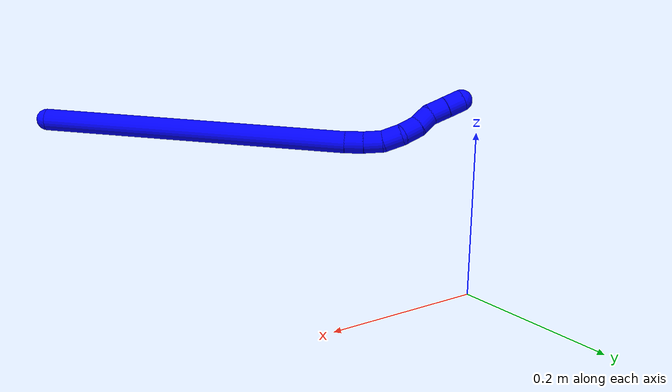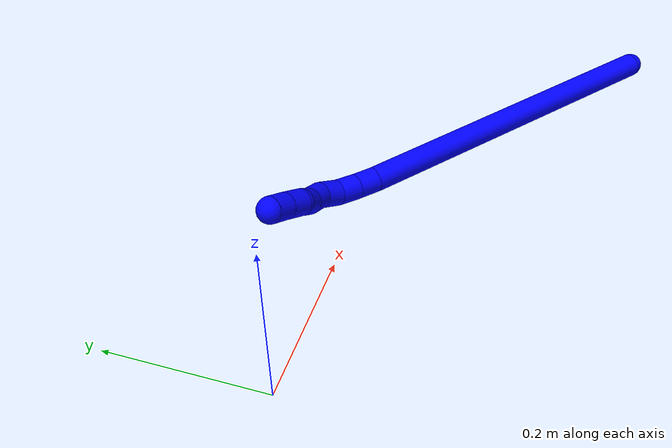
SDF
<sdf version="1.7">
 <world name="default">
  <plugin name="TubeGeneratorPlugin" filename="libtube_generator_plugin.so"/>
  <model name="photoneo_s_sensor">
   <static>1</static>
   <pose>0 0 2 1.57079 1.57079 3.14159</pose>
   <link name="link">
    <inertial><mass>0.1</mass></inertial>
    <sensor name="sensor" type="depth">
     <update_rate>30</update_rate>
     <camera>
      <horizontal_fov>1.22</horizontal_fov>
      <image><width>1920</width><height>1200</height><format>B8G8R8</format></image>
      <clip><near>0.1</near><far>4</far></clip>
      <depth_camera><output>points</output></depth_camera>
     </camera>
     <plugin name="camera_plugin" filename="libgazebo_ros_depth_camera.so">
      <baseline>0.2</baseline>
      <alwaysOn>1</alwaysOn>
      <updateRate>0.0</updateRate>
      <cameraName>camera_ir</cameraName>
      <imageTopicName>/camera/color/image_raw</imageTopicName>
      <cameraInfoTopicName>/camera/color/camera_info</cameraInfoTopicName>
      <depthImageTopicName>/camera/depth/image_raw</depthImageTopicName>
      <depthImageCameraInfoTopicName>/camera/depth/camera_info</depthImageCameraInfoTopicName>
      <pointCloudTopicName>/camera/depth/points</pointCloudTopicName>
      <frameName>fr_optical</frameName>
      <pointCloudCutoff>0.1</pointCloudCutoff>
      <pointCloudCutoffMax>2.0</pointCloudCutoffMax>
      <distortionK1>0</distortionK1>
      <distortionK2>0</distortionK2>
      <distortionK3>0</distortionK3>
      <distortionT1>0</distortionT1>
      <distortionT2>0</distortionT2>
      <CxPrime>0</CxPrime>
      <Cx>0</Cx>
      <Cy>0</Cy>
      <focalLength>0</focalLength>
      <hackBaseline>0</hackBaseline>
     </plugin>
    </sensor>
   </link>
  </model>
  <gravity>0 0 -9.8</gravity>
  <magnetic_field>6e-06 2.3e-05 -4.2e-05</magnetic_field>
  <atmosphere type="adiabatic"/>
  <physics name="default_physics" default="0" type="ode">
   <max_step_size>0.003</max_step_size>
   <real_time_factor>1</real_time_factor>
   <real_time_update_rate>1000</real_time_update_rate>
   <max_contacts>10000</max_contacts>
   <ode>
    <solver>
     <type>quick</type>
     <iters>100</iters>
     <sor>1.3</sor>
     <use_dynamic_moi_rescaling>0</use_dynamic_moi_rescaling>
    </solver>
    <constraints>
     <contact_max_correcting_vel>0</contact_max_correcting_vel>
     <contact_surface_layer>0.001</contact_surface_layer>
     <cfm>0</cfm>
     <erp>0.2</erp>
    </constraints>
   </ode>
  </physics>
  <scene><ambient>0.4 0.4 0.4 1</ambient><background>0.7 0.7 0.7 1</background><shadows>0</shadows></scene>
  <audio><device>default</device></audio>
  <spherical_coordinates>
   <surface_model>EARTH_WGS84</surface_model>
   <latitude_deg>0</latitude_deg>
   <longitude_deg>0</longitude_deg>
   <elevation>0</elevation>
   <heading_deg>0</heading_deg>
  </spherical_coordinates>
  <model name="bin">
   <static>1</static>
   <link name="bottom">
    <collision name="collision-bottom">
     <pose>0 0 -0.01 0 -0 0</pose>
     <geometry><box><size>0.8 0.6 0.02</size></box></geometry>
     <surface>
      <friction><ode><mu>100</mu><mu2>100</mu2></ode></friction>
      <contact><collide_bitmask>65535</collide_bitmask></contact>
     </surface>
    </collision>
   </link>
   <link name="west_wall">
    <collision name="collision-west_wall">
     <pose>-0.41 0 0.1 0 -0 0</pose>
     <geometry><box><size>0.02 0.6 0.2</size></box></geometry>
     <surface>
      <friction><ode><mu>100</mu><mu2>100</mu2></ode></friction>
      <contact><collide_bitmask>65535</collide_bitmask></contact>
     </surface>
    </collision>
   </link>
   <link name="east_wall">
    <collision name="collision-east_wall">
     <pose>0.41 0 0.1 0 -0 0</pose>
     <geometry><box><size>0.02 0.6 0.2</size></box></geometry>
     <surface>
      <friction><ode><mu>100</mu><mu2>100</mu2></ode></friction>
      <contact><collide_bitmask>65535</collide_bitmask></contact>
     </surface>
    </collision>
   </link>
   <link name="south_wall">
    <collision name="collision-south_wall">
     <pose>0 -0.31 0.1 0 -0 0</pose>
     <geometry><box><size>0.8 0.02 0.2</size></box></geometry>
     <surface>
      <friction><ode><mu>100</mu><mu2>100</mu2></ode></friction>
      <contact><collide_bitmask>65535</collide_bitmask></contact>
     </surface>
    </collision>
   </link>
   <link name="north_wall">
    <collision name="collision-north_wall">
     <pose>0 0.31 0.1 0 -0 0</pose>
     <geometry><box><size>0.8 0.02 0.2</size></box></geometry>
     <surface>
      <friction><ode><mu>100</mu><mu2>100</mu2></ode></friction>
      <contact><collide_bitmask>65535</collide_bitmask></contact>
     </surface>
    </collision>
   </link>
  </model>
  <model name="1">
   <static>0</static>
   <link name="1">
    <collision name="collision-cylinder-e_1_1_4">
     <pose>-0.028364 0.047604 -0.166858 -2.86368 -0.162034 1.05199</pose>
     <geometry><cylinder><radius>0.0125</radius><length>0.351638</length></cylinder></geometry>
     <surface>
      <friction><ode><mu>1.16</mu><mu2>1.16</mu2><slip1>0</slip1><slip2>0</slip2></ode></friction>
      <contact><ode><kp>1e+06</kp><kd>1</kd><max_vel>0</max_vel><min_depth>0.001</min_depth></ode></contact>
     </surface>
    </collision>
    <visual name="visual-cylinder-e_1_1_4">
     <pose>-0.028364 0.047604 -0.166858 -2.86368 -0.162034 1.05199</pose>
     <geometry><cylinder><radius>0.0125</radius><length>0.351638</length></cylinder></geometry>
     <material><ambient>0 0 1 1</ambient></material>
    </visual>
    <collision name="collision-cylinder-e_2_4_5">
     <pose>-0.058978 0.098576 -0.343722 -2.81697 -0.209988 1.14365</pose>
     <geometry><cylinder><radius>0.0125</radius><length>0.02159</length></cylinder></geometry>
     <surface>
      <friction><ode><mu>1.16</mu><mu2>1.16</mu2><slip1>0</slip1><slip2>0</slip2></ode></friction>
      <contact><ode><kp>1e+06</kp><kd>1</kd><max_vel>0</max_vel><min_depth>0.001</min_depth></ode></contact>
     </surface>
    </collision>
    <visual name="visual-cylinder-e_2_4_5">
     <pose>-0.058978 0.098576 -0.343722 -2.81697 -0.209988 1.14365</pose>
     <geometry><cylinder><radius>0.0125</radius><length>0.02159</length></cylinder></geometry>
     <material><ambient>0 0 1 1</ambient></material>
    </visual>
    <collision name="collision-cylinder-e_3_5_6">
     <pose>-0.064159 0.105536 -0.363511 -2.78957 -0.274135 1.3193</pose>
     <geometry><cylinder><radius>0.0125</radius><length>0.02165</length></cylinder></geometry>
     <surface>
      <friction><ode><mu>1.16</mu><mu2>1.16</mu2><slip1>0</slip1><slip2>0</slip2></ode></friction>
      <contact><ode><kp>1e+06</kp><kd>1</kd><max_vel>0</max_vel><min_depth>0.001</min_depth></ode></contact>
     </surface>
    </collision>
    <visual name="visual-cylinder-e_3_5_6">
     <pose>-0.064159 0.105536 -0.363511 -2.78957 -0.274135 1.3193</pose>
     <geometry><cylinder><radius>0.0125</radius><length>0.02165</length></cylinder></geometry>
     <material><ambient>0 0 1 1</ambient></material>
    </visual>
    <collision name="collision-cylinder-e_4_6_7">
     <pose>-0.072877 0.113019 -0.381718 -2.70905 -0.557581 1.83232</pose>
     <geometry><cylinder><radius>0.0125</radius><length>0.021873</length></cylinder></geometry>
     <surface>
      <friction><ode><mu>1.16</mu><mu2>1.16</mu2><slip1>0</slip1><slip2>0</slip2></ode></friction>
      <contact><ode><kp>1e+06</kp><kd>1</kd><max_vel>0</max_vel><min_depth>0.001</min_depth></ode></contact>
     </surface>
    </collision>
    <visual name="visual-cylinder-e_4_6_7">
     <pose>-0.072877 0.113019 -0.381718 -2.70905 -0.557581 1.83232</pose>
     <geometry><cylinder><radius>0.0125</radius><length>0.021873</length></cylinder></geometry>
     <material><ambient>0 0 1 1</ambient></material>
    </visual>
    <collision name="collision-cylinder-e_5_7_8">
     <pose>-0.086537 0.116886 -0.397802 3.13855 -0.799226 -3.13438</pose>
     <geometry><cylinder><radius>0.0125</radius><length>0.021967</length></cylinder></geometry>
     <surface>
      <friction><ode><mu>1.16</mu><mu2>1.16</mu2><slip1>0</slip1><slip2>0</slip2></ode></friction>
      <contact><ode><kp>1e+06</kp><kd>1</kd><max_vel>0</max_vel><min_depth>0.001</min_depth></ode></contact>
     </surface>
    </collision>
    <visual name="visual-cylinder-e_5_7_8">
     <pose>-0.086537 0.116886 -0.397802 3.13855 -0.799226 -3.13438</pose>
     <geometry><cylinder><radius>0.0125</radius><length>0.021967</length></cylinder></geometry>
     <material><ambient>0 0 1 1</ambient></material>
    </visual>
    <collision name="collision-cylinder-e_6_8_9">
     <pose>-0.103303 0.117575 -0.410409 -2.99856 -1.05866 2.8979</pose>
     <geometry><cylinder><radius>0.0125</radius><length>0.020405</length></cylinder></geometry>
     <surface>
      <friction><ode><mu>1.16</mu><mu2>1.16</mu2><slip1>0</slip1><slip2>0</slip2></ode></friction>
      <contact><ode><kp>1e+06</kp><kd>1</kd><max_vel>0</max_vel><min_depth>0.001</min_depth></ode></contact>
     </surface>
    </collision>
    <visual name="visual-cylinder-e_6_8_9">
     <pose>-0.103303 0.117575 -0.410409 -2.99856 -1.05866 2.8979</pose>
     <geometry><cylinder><radius>0.0125</radius><length>0.020405</length></cylinder></geometry>
     <material><ambient>0 0 1 1</ambient></material>
    </visual>
    <collision name="collision-cylinder-e_7_9_10">
     <pose>-0.118842 0.120572 -0.423054 -2.85314 -0.691374 2.37495</pose>
     <geometry><cylinder><radius>0.0125</radius><length>0.020844</length></cylinder></geometry>
     <surface>
      <friction><ode><mu>1.16</mu><mu2>1.16</mu2><slip1>0</slip1><slip2>0</slip2></ode></friction>
      <contact><ode><kp>1e+06</kp><kd>1</kd><max_vel>0</max_vel><min_depth>0.001</min_depth></ode></contact>
     </surface>
    </collision>
    <visual name="visual-cylinder-e_7_9_10">
     <pose>-0.118842 0.120572 -0.423054 -2.85314 -0.691374 2.37495</pose>
     <geometry><cylinder><radius>0.0125</radius><length>0.020844</length></cylinder></geometry>
     <material><ambient>0 0 1 1</ambient></material>
    </visual>
    <collision name="collision-cylinder-e_8_10_2">
     <pose>-0.13205 0.124654 -0.438101 -2.90169 -0.714499 2.51691</pose>
     <geometry><cylinder><radius>0.0125</radius><length>0.020033</length></cylinder></geometry>
     <surface>
      <friction><ode><mu>1.16</mu><mu2>1.16</mu2><slip1>0</slip1><slip2>0</slip2></ode></friction>
      <contact><ode><kp>1e+06</kp><kd>1</kd><max_vel>0</max_vel><min_depth>0.001</min_depth></ode></contact>
     </surface>
    </collision>
    <visual name="visual-cylinder-e_8_10_2">
     <pose>-0.13205 0.124654 -0.438101 -2.90169 -0.714499 2.51691</pose>
     <geometry><cylinder><radius>0.0125</radius><length>0.020033</length></cylinder></geometry>
     <material><ambient>0 0 1 1</ambient></material>
    </visual>
    <collision name="collision-sphere-2">
     <pose>-0.138613 0.126452 -0.445451 0 -0 0</pose>
     <geometry><sphere><radius>0.0125</radius></sphere></geometry>
     <surface>
      <friction><ode><mu>1.16</mu><mu2>1.16</mu2><slip1>0</slip1><slip2>0</slip2></ode></friction>
      <contact><ode><kp>1e+06</kp><kd>1</kd><max_vel>0</max_vel><min_depth>0.001</min_depth></ode></contact>
     </surface>
    </collision>
    <visual name="visual-sphere-2">
     <pose>-0.138613 0.126452 -0.445451 0 -0 0</pose>
     <geometry><sphere><radius>0.0125</radius></sphere></geometry>
     <material><ambient>0 0 1 1</ambient></material>
    </visual>
    <collision name="collision-sphere-10">
     <pose>-0.125487 0.122856 -0.430752 0 -0 0</pose>
     <geometry><sphere><radius>0.0125</radius></sphere></geometry>
     <surface>
      <friction><ode><mu>1.16</mu><mu2>1.16</mu2><slip1>0</slip1><slip2>0</slip2></ode></friction>
      <contact><ode><kp>1e+06</kp><kd>1</kd><max_vel>0</max_vel><min_depth>0.001</min_depth></ode></contact>
     </surface>
    </collision>
    <visual name="visual-sphere-10">
     <pose>-0.125487 0.122856 -0.430752 0 -0 0</pose>
     <geometry><sphere><radius>0.0125</radius></sphere></geometry>
     <material><ambient>0 0 1 1</ambient></material>
    </visual>
    <collision name="collision-sphere-9">
     <pose>-0.112197 0.118288 -0.415357 0 -0 0</pose>
     <geometry><sphere><radius>0.0125</radius></sphere></geometry>
     <surface>
      <friction><ode><mu>1.16</mu><mu2>1.16</mu2><slip1>0</slip1><slip2>0</slip2></ode></friction>
      <contact><ode><kp>1e+06</kp><kd>1</kd><max_vel>0</max_vel><min_depth>0.001</min_depth></ode></contact>
     </surface>
    </collision>
    <visual name="visual-sphere-9">
     <pose>-0.112197 0.118288 -0.415357 0 -0 0</pose>
     <geometry><sphere><radius>0.0125</radius></sphere></geometry>
     <material><ambient>0 0 1 1</ambient></material>
    </visual>
    <collision name="collision-sphere-4">
     <pose>-0.056728 0.095208 -0.333716 0 -0 0</pose>
     <geometry><sphere><radius>0.0125</radius></sphere></geometry>
     <surface>
      <friction><ode><mu>1.16</mu><mu2>1.16</mu2><slip1>0</slip1><slip2>0</slip2></ode></friction>
      <contact><ode><kp>1e+06</kp><kd>1</kd><max_vel>0</max_vel><min_depth>0.001</min_depth></ode></contact>
     </surface>
    </collision>
    <visual name="visual-sphere-4">
     <pose>-0.056728 0.095208 -0.333716 0 -0 0</pose>
     <geometry><sphere><radius>0.0125</radius></sphere></geometry>
     <material><ambient>0 0 1 1</ambient></material>
    </visual>
    <collision name="collision-sphere-1">
     <geometry><sphere><radius>0.0125</radius></sphere></geometry>
     <surface>
      <friction><ode><mu>1.16</mu><mu2>1.16</mu2><slip1>0</slip1><slip2>0</slip2></ode></friction>
      <contact><ode><kp>1e+06</kp><kd>1</kd><max_vel>0</max_vel><min_depth>0.001</min_depth></ode></contact>
     </surface>
    </collision>
    <visual name="visual-sphere-1">
     <geometry><sphere><radius>0.0125</radius></sphere></geometry>
     <material><ambient>0 0 1 1</ambient></material>
    </visual>
    <collision name="collision-sphere-8">
     <pose>-0.09441 0.116863 -0.40546 0 -0 0</pose>
     <geometry><sphere><radius>0.0125</radius></sphere></geometry>
     <surface>
      <friction><ode><mu>1.16</mu><mu2>1.16</mu2><slip1>0</slip1><slip2>0</slip2></ode></friction>
      <contact><ode><kp>1e+06</kp><kd>1</kd><max_vel>0</max_vel><min_depth>0.001</min_depth></ode></contact>
     </surface>
    </collision>
    <visual name="visual-sphere-8">
     <pose>-0.09441 0.116863 -0.40546 0 -0 0</pose>
     <geometry><sphere><radius>0.0125</radius></sphere></geometry>
     <material><ambient>0 0 1 1</ambient></material>
    </visual>
    <collision name="collision-sphere-5">
     <pose>-0.061229 0.101943 -0.353729 0 -0 0</pose>
     <geometry><sphere><radius>0.0125</radius></sphere></geometry>
     <surface>
      <friction><ode><mu>1.16</mu><mu2>1.16</mu2><slip1>0</slip1><slip2>0</slip2></ode></friction>
      <contact><ode><kp>1e+06</kp><kd>1</kd><max_vel>0</max_vel><min_depth>0.001</min_depth></ode></contact>
     </surface>
    </collision>
    <visual name="visual-sphere-5">
     <pose>-0.061229 0.101943 -0.353729 0 -0 0</pose>
     <geometry><sphere><radius>0.0125</radius></sphere></geometry>
     <material><ambient>0 0 1 1</ambient></material>
    </visual>
    <collision name="collision-sphere-6">
     <pose>-0.06709 0.109129 -0.373292 0 -0 0</pose>
     <geometry><sphere><radius>0.0125</radius></sphere></geometry>
     <surface>
      <friction><ode><mu>1.16</mu><mu2>1.16</mu2><slip1>0</slip1><slip2>0</slip2></ode></friction>
      <contact><ode><kp>1e+06</kp><kd>1</kd><max_vel>0</max_vel><min_depth>0.001</min_depth></ode></contact>
     </surface>
    </collision>
    <visual name="visual-sphere-6">
     <pose>-0.06709 0.109129 -0.373292 0 -0 0</pose>
     <geometry><sphere><radius>0.0125</radius></sphere></geometry>
     <material><ambient>0 0 1 1</ambient></material>
    </visual>
    <collision name="collision-sphere-7">
     <pose>-0.078664 0.116909 -0.390143 0 -0 0</pose>
     <geometry><sphere><radius>0.0125</radius></sphere></geometry>
     <surface>
      <friction><ode><mu>1.16</mu><mu2>1.16</mu2><slip1>0</slip1><slip2>0</slip2></ode></friction>
      <contact><ode><kp>1e+06</kp><kd>1</kd><max_vel>0</max_vel><min_depth>0.001</min_depth></ode></contact>
     </surface>
    </collision>
    <visual name="visual-sphere-7">
     <pose>-0.078664 0.116909 -0.390143 0 -0 0</pose>
     <geometry><sphere><radius>0.0125</radius></sphere></geometry>
     <material><ambient>0 0 1 1</ambient></material>
    </visual>
    <inertial>
     <pose>-0.046723 0.067203 -0.234043 0 -0 0</pose>
     <mass>0.5</mass>
     <inertia>
      <ixx>0.004889</ixx>
      <ixy>0</ixy>
      <ixz>0</ixz>
      <iyy>0.001544</iyy>
      <iyz>0</iyz>
      <izz>-0.000429</izz>
     </inertia>
    </inertial>
   </link>
   <pose>0.406439 -0.295223 0.212592 0.959317 0.95858 0.498369</pose>
  </model>
 </world>
</sdf>
